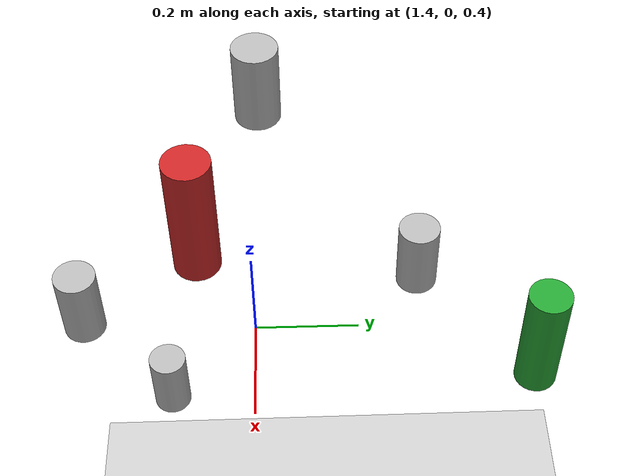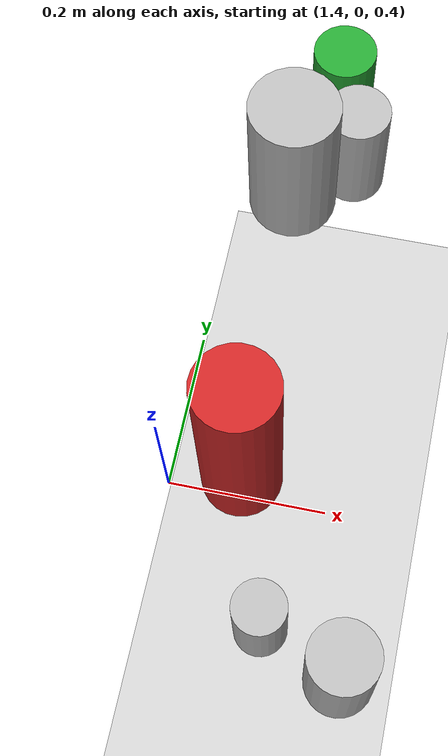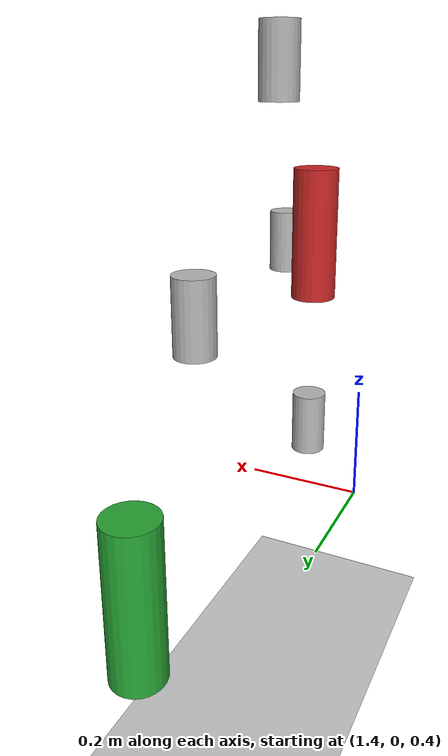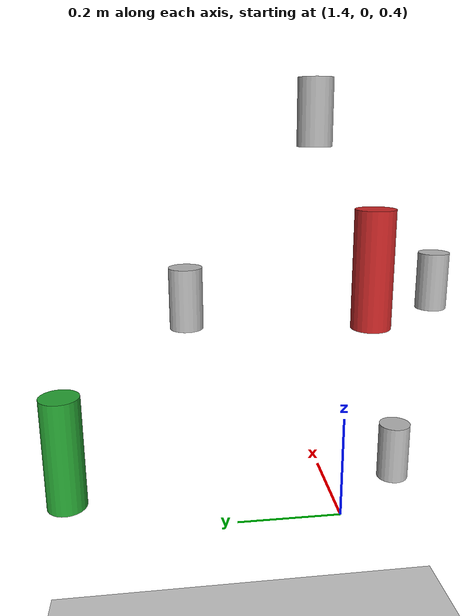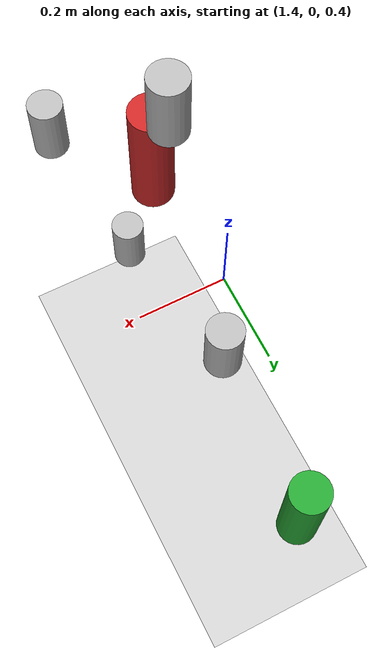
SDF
<sdf version="1.4">
 <world name="default">
  <model name="ground_plane">
   <static>1</static>
   <link name="link">
    <collision name="collision">
     <geometry><plane><normal>0 0 1</normal><size>100 100</size></plane></geometry>
     <surface><friction><ode><mu>100</mu><mu2>50</mu2></ode></friction></surface>
    </collision>
    <visual name="visual">
     <cast_shadows>0</cast_shadows>
     <geometry><plane><normal>0 0 1</normal><size>100 100</size></plane></geometry>
     <material>
      <script><uri>file://media/materials/scripts/gazebo.material</uri><name>Gazebo/Grey</name></script>
     </material>
    </visual>
    <velocity_decay><linear>0</linear><angular>0</angular></velocity_decay>
   </link>
  </model>
  <light name="sun" type="directional">
   <pose>-5 0 10 0 -0 0</pose>
   <diffuse>0.8 0.8 0.8 1</diffuse>
   <specular>0.2 0.2 0.2 1</specular>
   <attenuation>
    <range>1000</range>
    <constant>0.9</constant>
    <linear>0.01</linear>
    <quadratic>0.001</quadratic>
   </attenuation>
   <direction>0.8 0.0 -0.9</direction>
  </light>
  <physics type="ode">
   <max_step_size>0.001</max_step_size>
   <real_time_factor>1</real_time_factor>
   <real_time_update_rate>1000</real_time_update_rate>
   <gravity>0 0 -9.8</gravity>
  </physics>
  <scene><ambient>0.6 0.6 0.6 1</ambient><background>0.7 0.7 0.7 1</background><shadows>0</shadows></scene>
  <spherical_coordinates>
   <surface_model>EARTH_WGS84</surface_model>
   <latitude_deg>0</latitude_deg>
   <longitude_deg>0</longitude_deg>
   <elevation>0</elevation>
   <heading_deg>0</heading_deg>
  </spherical_coordinates>
  <model name="pringles_green">
   <pose>1.52 0.530503 0.505317 0.000164 -1.6e-05 0.373288</pose>
   <link name="link">
    <inertial>
     <mass>0.2</mass>
     <inertia>
      <ixx>0.000908</ixx>
      <ixy>0</ixy>
      <ixz>0</ixz>
      <iyy>0.000908</iyy>
      <iyz>0</iyz>
      <izz>0.0002025</izz>
     </inertia>
    </inertial>
    <collision name="collision">
     <geometry><cylinder><radius>0.04</radius><length>0.235</length></cylinder></geometry>
     <surface>
      <contact><ode><min_depth>0.005</min_depth></ode></contact>
      <friction><ode><mu>0.9</mu><mu2>0.9</mu2></ode></friction>
     </surface>
    </collision>
    <visual name="visual">
     <geometry><cylinder><radius>0.04</radius><length>0.235</length></cylinder></geometry>
     <material>
      <script>
       <uri>model://pringles_green/material/scripts</uri>
       <uri>model://pringles_green/material/textures</uri>
       <name>Custom/PringlesGreen</name>
      </script>
     </material>
    </visual>
    <velocity_decay><linear>0</linear><angular>0</angular></velocity_decay>
   </link>
   <static>0</static>
  </model>
  <model name="cocacola">
   <pose>1.56659 0.281164 0.799147 0.000109 -0.000211 -3.03496</pose>
   <link name="link">
    <inertial>
     <mass>0.39</mass>
     <inertia><ixx>0.00058</ixx><ixy>0</ixy><ixz>0</ixz><iyy>0.00058</iyy><iyz>0</iyz><izz>0.00019</izz></inertia>
    </inertial>
    <collision name="collision">
     <geometry><cylinder><radius>0.03302</radius><length>0.12268</length></cylinder></geometry>
     <surface>
      <contact><ode><min_depth>0.005</min_depth></ode></contact>
      <friction><ode><mu>0.9</mu><mu2>0.9</mu2></ode></friction>
     </surface>
    </collision>
    <visual name="visual">
     <geometry><cylinder><radius>0.03302</radius><length>0.12268</length></cylinder></geometry>
     <material>
      <script>
       <uri>model://cocacola/materials/scripts</uri>
       <uri>model://cocacola/materials/textures</uri>
       <name>CocaCola/Diffuse</name>
      </script>
     </material>
    </visual>
    <velocity_decay><linear>0</linear><angular>0</angular></velocity_decay>
   </link>
   <static>0</static>
  </model>
  <model name="heineken">
   <pose>1.64758 -0.255207 0.799137 -1.7e-05 -0.000117 0.105506</pose>
   <link name="link">
    <inertial>
     <mass>0.39</mass>
     <inertia><ixx>0.00058</ixx><ixy>0</ixy><ixz>0</ixz><iyy>0.00058</iyy><iyz>0</iyz><izz>0.00019</izz></inertia>
    </inertial>
    <collision name="collision">
     <geometry><cylinder><radius>0.03302</radius><length>0.12268</length></cylinder></geometry>
     <surface>
      <contact><ode><min_depth>0.005</min_depth></ode></contact>
      <friction><ode><mu>0.9</mu><mu2>0.9</mu2></ode></friction>
     </surface>
    </collision>
    <visual name="visual">
     <geometry><cylinder><radius>0.03302</radius><length>0.12268</length></cylinder></geometry>
     <material>
      <script>
       <uri>model://heineken/materials/scripts</uri>
       <uri>model://heineken/materials/textures</uri>
       <name>Heineken/Diffuse</name>
      </script>
     </material>
    </visual>
    <velocity_decay><linear>0</linear><angular>0</angular></velocity_decay>
   </link>
   <static>0</static>
  </model>
  <model name="pringles_red">
   <pose>1.52 -0.080746 0.855295 4.3e-05 4.5e-05 -0.718432</pose>
   <link name="link">
    <inertial>
     <mass>0.2</mass>
     <inertia>
      <ixx>0.000908</ixx>
      <ixy>0</ixy>
      <ixz>0</ixz>
      <iyy>0.000908</iyy>
      <iyz>0</iyz>
      <izz>0.0002025</izz>
     </inertia>
    </inertial>
    <collision name="collision">
     <geometry><cylinder><radius>0.04</radius><length>0.235</length></cylinder></geometry>
     <surface>
      <contact><ode><min_depth>0.005</min_depth></ode></contact>
      <friction><ode><mu>0.9</mu><mu2>0.9</mu2></ode></friction>
     </surface>
    </collision>
    <visual name="visual">
     <pose>0 0 0 3.1415 -0 0</pose>
     <geometry><cylinder><radius>0.04</radius><length>0.235</length></cylinder></geometry>
     <material>
      <script>
       <uri>model://pringles_red/material/scripts</uri>
       <uri>model://pringles_red/material/textures</uri>
       <name>Custom/PringlesRed</name>
      </script>
     </material>
    </visual>
    <velocity_decay><linear>0</linear><angular>0</angular></velocity_decay>
   </link>
   <static>0</static>
  </model>
  <model name="baltica">
   <pose>1.54333 0.036125 1.14914 1.4e-05 -0.000141 2.6777</pose>
   <link name="link">
    <inertial>
     <mass>0.39</mass>
     <inertia><ixx>0.00058</ixx><ixy>0</ixy><ixz>0</ixz><iyy>0.00058</iyy><iyz>0</iyz><izz>0.00019</izz></inertia>
    </inertial>
    <collision name="collision">
     <geometry><cylinder><radius>0.03302</radius><length>0.12268</length></cylinder></geometry>
     <surface>
      <contact><ode><min_depth>0.005</min_depth></ode></contact>
      <friction><ode><mu>0.9</mu><mu2>0.9</mu2></ode></friction>
     </surface>
    </collision>
    <visual name="visual">
     <geometry><cylinder><radius>0.03302</radius><length>0.12268</length></cylinder></geometry>
     <material>
      <script>
       <uri>model://baltica/materials/scripts</uri>
       <uri>model://baltica/materials/textures</uri>
       <name>Baltica/Diffuse</name>
      </script>
     </material>
    </visual>
    <velocity_decay><linear>0</linear><angular>0</angular></velocity_decay>
   </link>
   <static>0</static>
  </model>
  <model name="sprite">
   <pose>1.54946 -0.154144 0.449124 -5.7e-05 -6.1e-05 0.260336</pose>
   <link name="link">
    <inertial>
     <mass>0.39</mass>
     <inertia><ixx>0.00058</ixx><ixy>0</ixy><ixz>0</ixz><iyy>0.00058</iyy><iyz>0</iyz><izz>0.00019</izz></inertia>
    </inertial>
    <collision name="collision">
     <geometry><cylinder><radius>0.03302</radius><length>0.12268</length></cylinder></geometry>
     <surface>
      <contact><ode><min_depth>0.005</min_depth></ode></contact>
      <friction><ode><mu>0.9</mu><mu2>0.9</mu2></ode></friction>
     </surface>
    </collision>
    <visual name="visual">
     <geometry><cylinder><radius>0.03302</radius><length>0.12268</length></cylinder></geometry>
     <material>
      <script>
       <uri>model://sprite/materials/scripts</uri>
       <uri>model://sprite/materials/textures</uri>
       <name>Sprite/Diffuse</name>
      </script>
     </material>
    </visual>
    <velocity_decay><linear>0</linear><angular>0</angular></velocity_decay>
   </link>
   <static>0</static>
  </model>
 </world>
</sdf>
